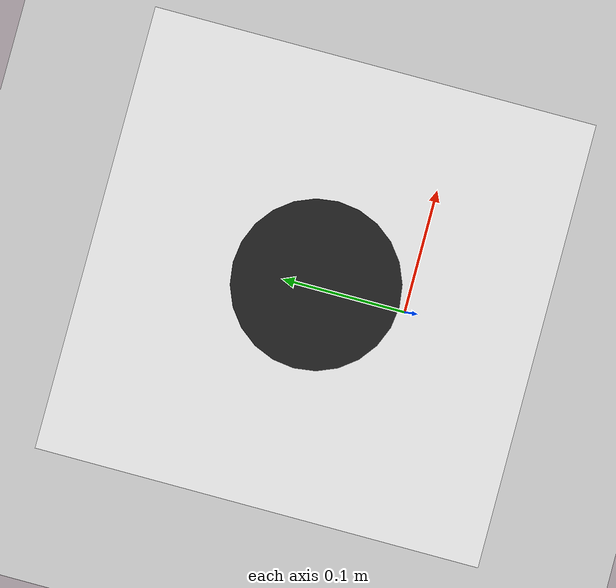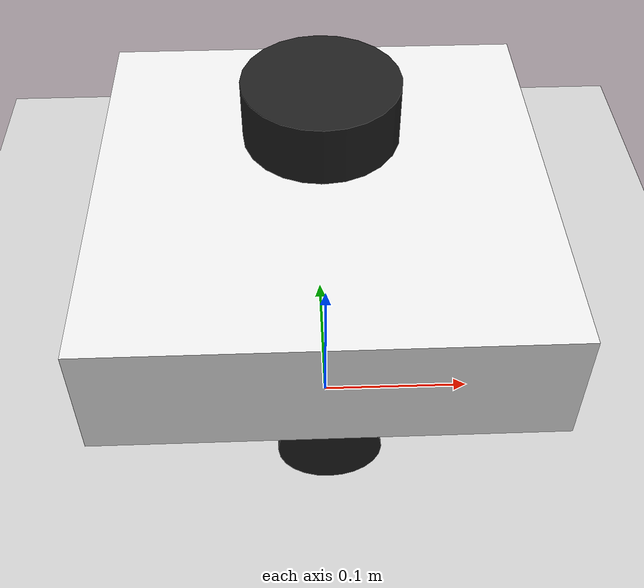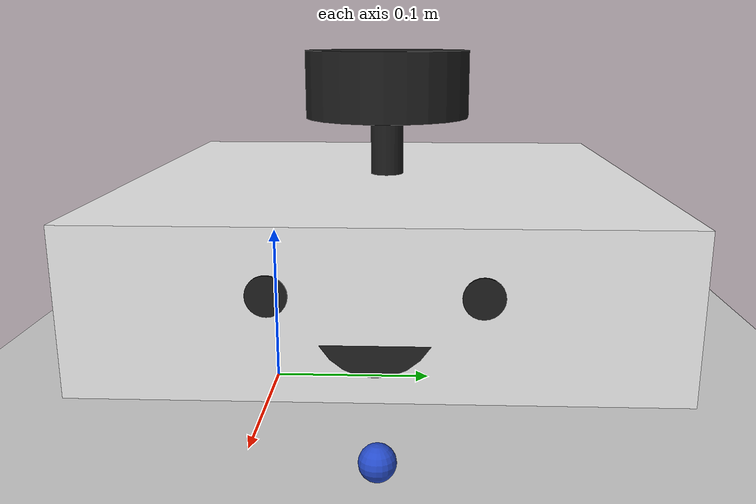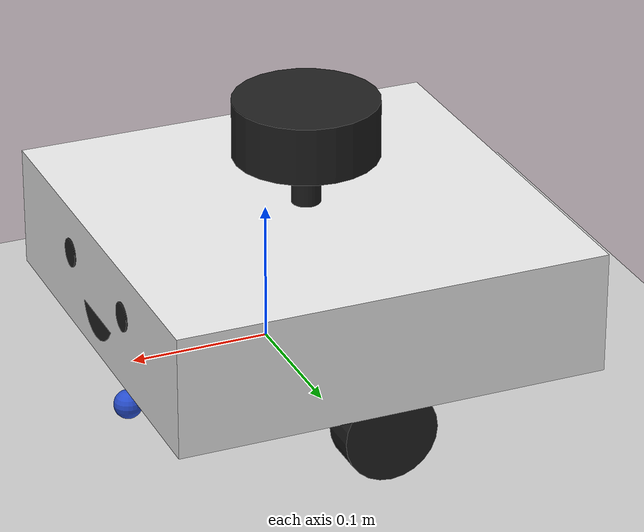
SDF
<sdf version="1.7">
 <world name="default">
  <light name="sun" type="directional">
   <pose>0 0 10 0 -0 0</pose>
   <diffuse>0.8 0.8 0.8 1</diffuse>
   <specular>0.2 0.2 0.2 1</specular>
   <attenuation>
    <range>1000</range>
    <constant>0.9</constant>
    <linear>0.01</linear>
    <quadratic>0.001</quadratic>
   </attenuation>
   <direction>-0.5 0.1 -0.9</direction>
   <spot><inner_angle>0</inner_angle><outer_angle>0</outer_angle><falloff>0</falloff></spot>
  </light>
  <model name="ground_plane">
   <static>1</static>
   <link name="link">
    <collision name="collision">
     <geometry><plane><normal>0 0 1</normal><size>100 100</size></plane></geometry>
     <surface>
      <contact><collide_bitmask>65535</collide_bitmask></contact>
      <friction><ode><mu>100</mu><mu2>50</mu2></ode></friction>
     </surface>
    </collision>
    <visual name="visual">
     <cast_shadows>0</cast_shadows>
     <geometry><plane><normal>0 0 1</normal><size>100 100</size></plane></geometry>
     <material>
      <script><uri>file://media/materials/scripts/gazebo.material</uri><name>Gazebo/Grey</name></script>
     </material>
    </visual>
   </link>
  </model>
  <gravity>0 0 -9.8</gravity>
  <magnetic_field>6e-06 2.3e-05 -4.2e-05</magnetic_field>
  <atmosphere type="adiabatic"/>
  <physics type="ode">
   <max_step_size>0.001</max_step_size>
   <real_time_factor>1</real_time_factor>
   <real_time_update_rate>1000</real_time_update_rate>
  </physics>
  <scene><ambient>0.4 0.4 0.4 1</ambient><background>0.7 0.7 0.7 1</background><shadows>1</shadows></scene>
  <spherical_coordinates>
   <surface_model>EARTH_WGS84</surface_model>
   <latitude_deg>0</latitude_deg>
   <longitude_deg>0</longitude_deg>
   <elevation>0</elevation>
   <heading_deg>0</heading_deg>
  </spherical_coordinates>
  <model name="my_bot">
   <link name="base_link">
    <inertial>
     <pose>0 0 0.053438 0 -0 0</pose>
     <mass>0.8</mass>
     <inertia>
      <ixx>0.0064648</ixx>
      <ixy>0</ixy>
      <ixz>-5.48173e-19</ixz>
      <iyy>0.0098448</iyy>
      <iyz>0</iyz>
      <izz>0.011013</izz>
     </inertia>
    </inertial>
    <collision name="base_link_fixed_joint_lump__chassis_collision">
     <pose>0 0 0.0625 0 -0 0</pose>
     <geometry><box><size>0.3 0.3 0.085</size></box></geometry>
    </collision>
    <collision name="base_link_fixed_joint_lump__caster1_wheel_collision_1">
     <pose>0.13 0 -0.0225 0 -0 0</pose>
     <geometry><sphere><radius>0.01</radius></sphere></geometry>
     <surface><friction><ode><mu>0.001</mu><mu2>0.001</mu2></ode></friction></surface>
    </collision>
    <collision name="base_link_fixed_joint_lump__caster_wheel_collision_2">
     <pose>-0.13 0 -0.0225 0 -0 0</pose>
     <geometry><sphere><radius>0.01</radius></sphere></geometry>
     <surface><friction><ode><mu>0.001</mu><mu2>0.001</mu2></ode></friction></surface>
    </collision>
    <collision name="base_link_fixed_joint_lump__laser_frame_collision_3">
     <pose>0 0 0.16 0 -0 0</pose>
     <geometry><cylinder><length>0.04</length><radius>0.05</radius></cylinder></geometry>
    </collision>
    <visual name="base_link_fixed_joint_lump__chassis_visual">
     <pose>0 0 0.0625 0 -0 0</pose>
     <geometry><box><size>0.3 0.3 0.085</size></box></geometry>
     <material>
      <script><name>Gazebo/White</name><uri>file://media/materials/scripts/gazebo.material</uri></script>
     </material>
    </visual>
    <visual name="base_link_fixed_joint_lump__caster1_wheel_visual_1">
     <pose>0.13 0 -0.0225 0 -0 0</pose>
     <geometry><sphere><radius>0.01</radius></sphere></geometry>
     <material>
      <script><name>Gazebo/Blue</name><uri>file://media/materials/scripts/gazebo.material</uri></script>
     </material>
    </visual>
    <visual name="base_link_fixed_joint_lump__caster_wheel_visual_2">
     <pose>-0.13 0 -0.0225 0 -0 0</pose>
     <geometry><sphere><radius>0.01</radius></sphere></geometry>
     <material>
      <script><name>Gazebo/Blue</name><uri>file://media/materials/scripts/gazebo.material</uri></script>
     </material>
    </visual>
    <visual name="base_link_fixed_joint_lump__face_link_visual_3">
     <pose>0.15 0.05 0.0725 3.14159 1.57079 3.14159</pose>
     <geometry><cylinder><length>0.002</length><radius>0.01</radius></cylinder></geometry>
     <material>
      <script><name>Gazebo/Black</name><uri>file://media/materials/scripts/gazebo.material</uri></script>
     </material>
    </visual>
    <visual name="base_link_fixed_joint_lump__face_link_visual_4">
     <pose>0.15 -0.05 0.0725 3.14159 1.57079 3.14159</pose>
     <geometry><cylinder><length>0.002</length><radius>0.01</radius></cylinder></geometry>
     <material>
      <script><name>Gazebo/Black</name><uri>file://media/materials/scripts/gazebo.material</uri></script>
     </material>
    </visual>
    <visual name="base_link_fixed_joint_lump__face_link_visual_5">
     <pose>0.139 0 0.0625 0 1.5 0</pose>
     <geometry><cylinder><length>0.02</length><radius>0.03</radius></cylinder></geometry>
     <material>
      <script><name>Gazebo/Black</name><uri>file://media/materials/scripts/gazebo.material</uri></script>
     </material>
    </visual>
    <visual name="base_link_fixed_joint_lump__laser_frame_visual_6">
     <pose>0 0 0.16 0 -0 0</pose>
     <geometry><cylinder><length>0.04</length><radius>0.05</radius></cylinder></geometry>
     <material>
      <script><name>Gazebo/Black</name><uri>file://media/materials/scripts/gazebo.material</uri></script>
     </material>
    </visual>
    <visual name="base_link_fixed_joint_lump__laser_frame_visual_7">
     <pose>0 0 0.11 0 -0 0</pose>
     <geometry><cylinder><length>0.1</length><radius>0.01</radius></cylinder></geometry>
     <material>
      <script><name>Gazebo/Black</name><uri>file://media/materials/scripts/gazebo.material</uri></script>
     </material>
    </visual>
    <sensor name="laser" type="ray">
     <visualize>0</visualize>
     <update_rate>10</update_rate>
     <ray>
      <scan>
       <horizontal>
        <samples>360</samples>
        <min_angle>-3.14</min_angle>
        <max_angle>3.14</max_angle>
        <resolution>1</resolution>
       </horizontal>
       <vertical><samples>1</samples><min_angle>0</min_angle><max_angle>0</max_angle></vertical>
      </scan>
      <range><min>0.3</min><max>12</max></range>
     </ray>
     <plugin name="laser_controller" filename="libgazebo_ros_ray_sensor.so">
      <ros><argument>~/out:=scan</argument></ros>
      <output_type>sensor_msgs/LaserScan</output_type>
      <frame_name>laser_frame</frame_name>
     </plugin>
     <pose>0 0 0.16 0 -0 0</pose>
    </sensor>
   </link>
   <joint name="left_wheel_joint" type="revolute">
    <pose relative_to="base_link">0 0.13 0 -1.5708 0 0</pose>
    <parent>base_link</parent>
    <child>left_wheel</child>
    <axis>
     <xyz>0 0 1</xyz>
     <limit><lower>-1e+16</lower><upper>1e+16</upper></limit>
     <dynamics><spring_reference>0</spring_reference><spring_stiffness>0</spring_stiffness></dynamics>
    </axis>
   </joint>
   <link name="left_wheel">
    <pose relative_to="left_wheel_joint">0 0 0 0 -0 0</pose>
    <inertial>
     <mass>0.05</mass>
     <inertia>
      <ixx>1.62406e-05</ixx>
      <ixy>0</ixy>
      <ixz>0</ixz>
      <iyy>1.62406e-05</iyy>
      <iyz>0</iyz>
      <izz>2.64063e-05</izz>
     </inertia>
    </inertial>
    <collision name="left_wheel_collision">
     <geometry><sphere><radius>0.0325</radius></sphere></geometry>
    </collision>
    <visual name="left_wheel_visual">
     <geometry><cylinder><length>0.027</length><radius>0.0325</radius></cylinder></geometry>
     <material>
      <script><name>Gazebo/Black</name><uri>file://media/materials/scripts/gazebo.material</uri></script>
     </material>
    </visual>
   </link>
   <joint name="right_wheel_joint" type="revolute">
    <pose relative_to="base_link">0 -0.13 0 1.5708 -0 0</pose>
    <parent>base_link</parent>
    <child>right_wheel</child>
    <axis>
     <xyz>0 0 -1</xyz>
     <limit><lower>-1e+16</lower><upper>1e+16</upper></limit>
     <dynamics><spring_reference>0</spring_reference><spring_stiffness>0</spring_stiffness></dynamics>
    </axis>
   </joint>
   <link name="right_wheel">
    <pose relative_to="right_wheel_joint">0 0 0 0 -0 0</pose>
    <inertial>
     <mass>0.05</mass>
     <inertia>
      <ixx>1.62406e-05</ixx>
      <ixy>0</ixy>
      <ixz>0</ixz>
      <iyy>1.62406e-05</iyy>
      <iyz>0</iyz>
      <izz>2.64063e-05</izz>
     </inertia>
    </inertial>
    <collision name="right_wheel_collision">
     <geometry><sphere><radius>0.0325</radius></sphere></geometry>
    </collision>
    <visual name="right_wheel_visual">
     <geometry><cylinder><length>0.027</length><radius>0.0325</radius></cylinder></geometry>
     <material>
      <script><name>Gazebo/Black</name><uri>file://media/materials/scripts/gazebo.material</uri></script>
     </material>
    </visual>
   </link>
   <static>0</static>
   <plugin name="gazebo_ros2_control" filename="libgazebo_ros2_control.so">
    <parameters>/home/agvpc/pc_ws/install/agvbot_one/share/agvbot_one/config/my_controllers.yaml</parameters>
    <parameters>/home/agvpc/pc_ws/install/agvbot_one/share/agvbot_one/config/gaz_ros2_ctl_use_sim.yaml</parameters>
   </plugin>
   <pose>-1.7e-05 0.072755 0.032496 -2.8e-05 0 -0.000254</pose>
  </model>
 </world>
</sdf>
